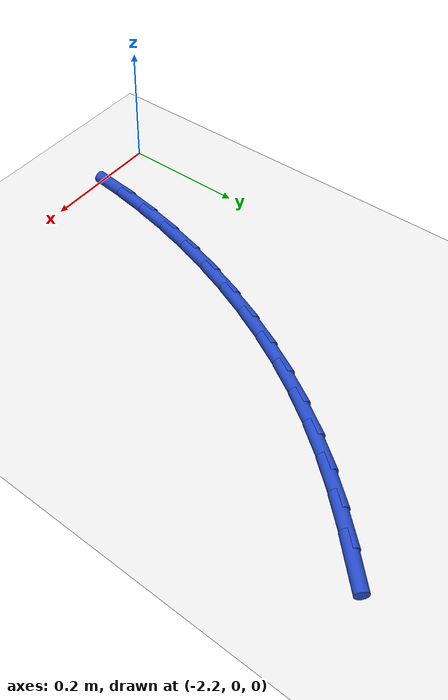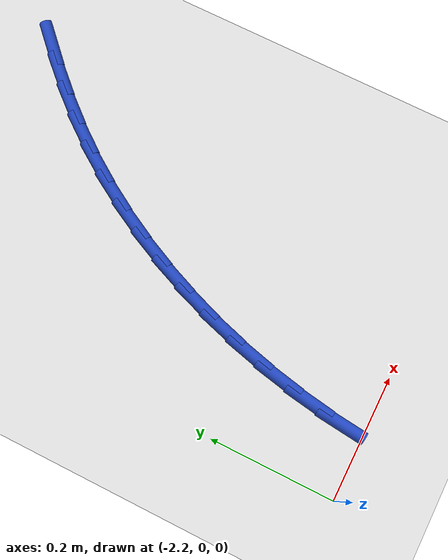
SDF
<sdf version="1.6">
 <world name="default">
  <model name="ground_plane">
   <static>1</static>
   <link name="link">
    <collision name="collision">
     <geometry><plane><normal>0 0 1</normal><size>100 100</size></plane></geometry>
     <surface><friction><ode><mu>100</mu><mu2>50</mu2></ode></friction></surface>
    </collision>
    <visual name="visual">
     <cast_shadows>0</cast_shadows>
     <geometry><plane><normal>0 0 1</normal><size>100 100</size></plane></geometry>
     <material>
      <script><uri>file://media/materials/scripts/gazebo.material</uri><name>Gazebo/WhiteGlow</name></script>
     </material>
    </visual>
   </link>
  </model>
  <model name="line">
   <link name="link_46">
    <pose>-1.7557038440111374 0.7065855855521623 0.01 0 1.57 0.7662617555941469</pose>
    <collision name="collision">
     <geometry><cylinder><radius>0.01</radius><length>0.08</length></cylinder></geometry>
    </collision>
    <visual name="visual">
     <material>
      <script><name>Gazebo/Blue</name><uri>file://media/materials/scripts/gazebo.material</uri></script>
     </material>
     <geometry><cylinder><radius>0.01</radius><length>0.08</length></cylinder></geometry>
    </visual>
   </link>
   <link name="link_47">
    <pose>-1.7944715317543978 0.669273960309649 0.01 0 1.57 0.8079434859232436</pose>
    <collision name="collision">
     <geometry><cylinder><radius>0.01</radius><length>0.08</length></cylinder></geometry>
    </collision>
    <visual name="visual">
     <material>
      <script><name>Gazebo/Blue</name><uri>file://media/materials/scripts/gazebo.material</uri></script>
     </material>
     <geometry><cylinder><radius>0.01</radius><length>0.08</length></cylinder></geometry>
    </visual>
   </link>
   <link name="link_48">
    <pose>-1.8314605541787745 0.6305783134417496 0.01 0 1.57 0.8570962604601469</pose>
    <collision name="collision">
     <geometry><cylinder><radius>0.01</radius><length>0.08</length></cylinder></geometry>
    </collision>
    <visual name="visual">
     <material>
      <script><name>Gazebo/Blue</name><uri>file://media/materials/scripts/gazebo.material</uri></script>
     </material>
     <geometry><cylinder><radius>0.01</radius><length>0.08</length></cylinder></geometry>
    </visual>
   </link>
   <link name="link_49">
    <pose>-1.8664279744806056 0.5901994306562098 0.01 0 1.57 0.912926413660948</pose>
    <collision name="collision">
     <geometry><cylinder><radius>0.01</radius><length>0.08</length></cylinder></geometry>
    </collision>
    <visual name="visual">
     <material>
      <script><name>Gazebo/Blue</name><uri>file://media/materials/scripts/gazebo.material</uri></script>
     </material>
     <geometry><cylinder><radius>0.01</radius><length>0.08</length></cylinder></geometry>
    </visual>
   </link>
   <link name="link_50">
    <pose>-1.8991430201590127 0.5478606770460838 0.01 0 1.57 0.970134065079386</pose>
    <collision name="collision">
     <geometry><cylinder><radius>0.01</radius><length>0.08</length></cylinder></geometry>
    </collision>
    <visual name="visual">
     <material>
      <script><name>Gazebo/Blue</name><uri>file://media/materials/scripts/gazebo.material</uri></script>
     </material>
     <geometry><cylinder><radius>0.01</radius><length>0.08</length></cylinder></geometry>
    </visual>
   </link>
   <link name="link_51">
    <pose>-1.9295100747749285 0.5035362944584193 0.01 0 1.57 1.0256104467572786</pose>
    <collision name="collision">
     <geometry><cylinder><radius>0.01</radius><length>0.08</length></cylinder></geometry>
    </collision>
    <visual name="visual">
     <material>
      <script><name>Gazebo/Blue</name><uri>file://media/materials/scripts/gazebo.material</uri></script>
     </material>
     <geometry><cylinder><radius>0.01</radius><length>0.08</length></cylinder></geometry>
    </visual>
   </link>
   <link name="link_52">
    <pose>-1.9575178387527405 0.4573570337471489 0.01 0 1.57 1.0793570649604443</pose>
    <collision name="collision">
     <geometry><cylinder><radius>0.01</radius><length>0.08</length></cylinder></geometry>
    </collision>
    <visual name="visual">
     <material>
      <script><name>Gazebo/Blue</name><uri>file://media/materials/scripts/gazebo.material</uri></script>
     </material>
     <geometry><cylinder><radius>0.01</radius><length>0.08</length></cylinder></geometry>
    </visual>
   </link>
   <link name="link_53">
    <pose>-1.983156293868991 0.40945602421276456 0.01 0 1.57 1.1314519506345824</pose>
    <collision name="collision">
     <geometry><cylinder><radius>0.01</radius><length>0.08</length></cylinder></geometry>
    </collision>
    <visual name="visual">
     <material>
      <script><name>Gazebo/Blue</name><uri>file://media/materials/scripts/gazebo.material</uri></script>
     </material>
     <geometry><cylinder><radius>0.01</radius><length>0.08</length></cylinder></geometry>
    </visual>
   </link>
   <link name="link_54">
    <pose>-2.006415421900223 0.3599663951557565 0.01 0 1.57 1.181996838025605</pose>
    <collision name="collision">
     <geometry><cylinder><radius>0.01</radius><length>0.08</length></cylinder></geometry>
    </collision>
    <visual name="visual">
     <material>
      <script><name>Gazebo/Blue</name><uri>file://media/materials/scripts/gazebo.material</uri></script>
     </material>
     <geometry><cylinder><radius>0.01</radius><length>0.08</length></cylinder></geometry>
    </visual>
   </link>
   <link name="link_55">
    <pose>-2.027285204622978 0.30902127587661654 0.01 0 1.57 1.2311112199253107</pose>
    <collision name="collision">
     <geometry><cylinder><radius>0.01</radius><length>0.08</length></cylinder></geometry>
    </collision>
    <visual name="visual">
     <material>
      <script><name>Gazebo/Blue</name><uri>file://media/materials/scripts/gazebo.material</uri></script>
     </material>
     <geometry><cylinder><radius>0.01</radius><length>0.08</length></cylinder></geometry>
    </visual>
   </link>
   <link name="link_56">
    <pose>-2.045755623813801 0.2567537956758352 0.01 0 1.57 1.2789272821584965</pose>
    <collision name="collision">
     <geometry><cylinder><radius>0.01</radius><length>0.08</length></cylinder></geometry>
    </collision>
    <visual name="visual">
     <material>
      <script><name>Gazebo/Blue</name><uri>file://media/materials/scripts/gazebo.material</uri></script>
     </material>
     <geometry><cylinder><radius>0.01</radius><length>0.08</length></cylinder></geometry>
    </visual>
   </link>
   <link name="link_57">
    <pose>-2.061816661249233 0.20329708385390416 0.01 0 1.57 1.3255857373372133</pose>
    <collision name="collision">
     <geometry><cylinder><radius>0.01</radius><length>0.08</length></cylinder></geometry>
    </collision>
    <visual name="visual">
     <material>
      <script><name>Gazebo/Blue</name><uri>file://media/materials/scripts/gazebo.material</uri></script>
     </material>
     <geometry><cylinder><radius>0.01</radius><length>0.08</length></cylinder></geometry>
    </visual>
   </link>
   <link name="link_58">
    <pose>-2.0754582987058185 0.14878426971131406 0.01 0 1.57 1.3712325030516053</pose>
    <collision name="collision">
     <geometry><cylinder><radius>0.01</radius><length>0.08</length></cylinder></geometry>
    </collision>
    <visual name="visual">
     <material>
      <script><name>Gazebo/Blue</name><uri>file://media/materials/scripts/gazebo.material</uri></script>
     </material>
     <geometry><cylinder><radius>0.01</radius><length>0.08</length></cylinder></geometry>
    </visual>
   </link>
   <link name="link_59">
    <pose>-2.0866705179601 0.09334848254855659 0.01 0 1.57 1.416110082683918</pose>
    <collision name="collision">
     <geometry><cylinder><radius>0.01</radius><length>0.08</length></cylinder></geometry>
    </collision>
    <visual name="visual">
     <material>
      <script><name>Gazebo/Blue</name><uri>file://media/materials/scripts/gazebo.material</uri></script>
     </material>
     <geometry><cylinder><radius>0.01</radius><length>0.08</length></cylinder></geometry>
    </visual>
   </link>
   <link name="link_60">
    <pose>-2.095436658739959 0.0371307445842409 0.01 0 1.57 1.461589563776415</pose>
    <collision name="collision">
     <geometry><cylinder><radius>0.01</radius><length>0.08</length></cylinder></geometry>
    </collision>
    <visual name="visual">
     <material>
      <script><name>Gazebo/Blue</name><uri>file://media/materials/scripts/gazebo.material</uri></script>
     </material>
     <geometry><cylinder><radius>0.01</radius><length>0.08</length></cylinder></geometry>
    </visual>
   </link>
  </model>
 </world>
</sdf>
